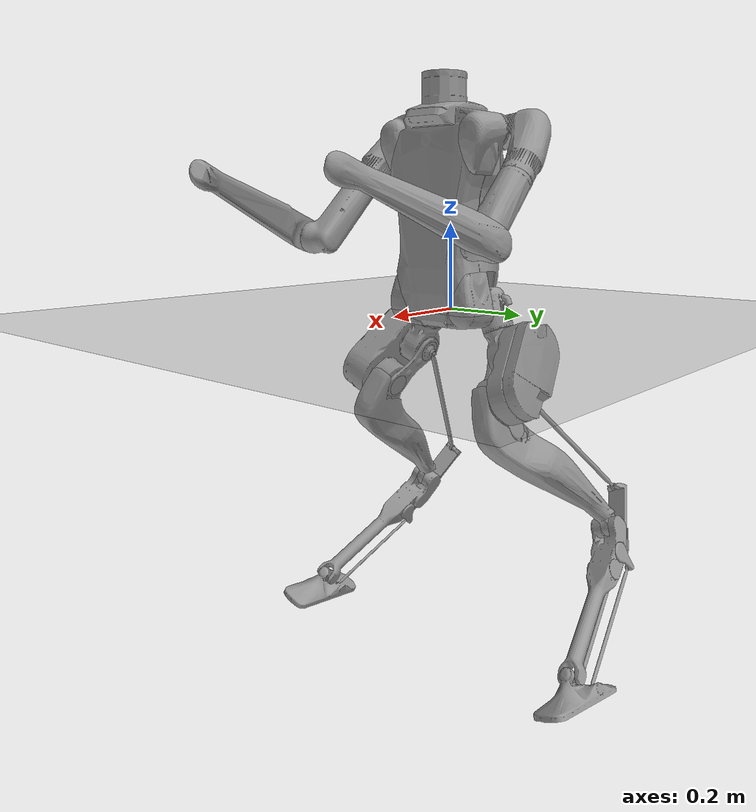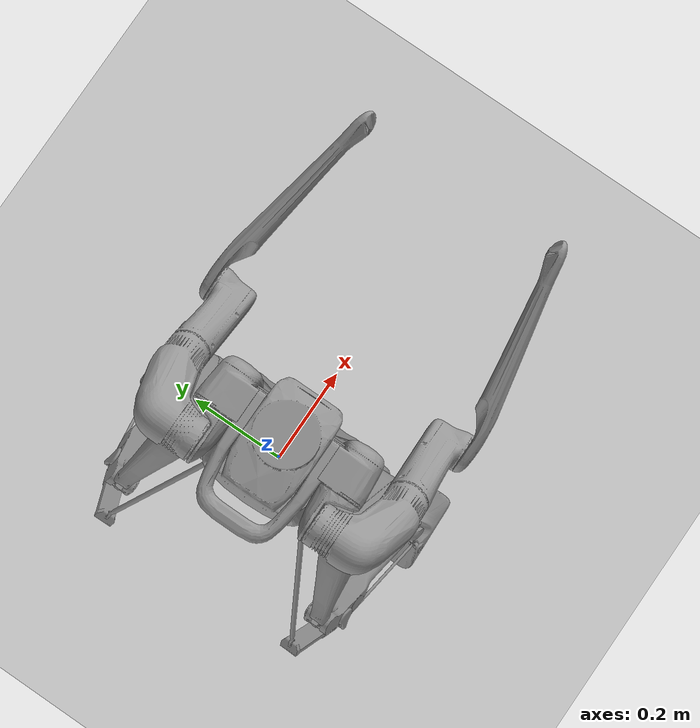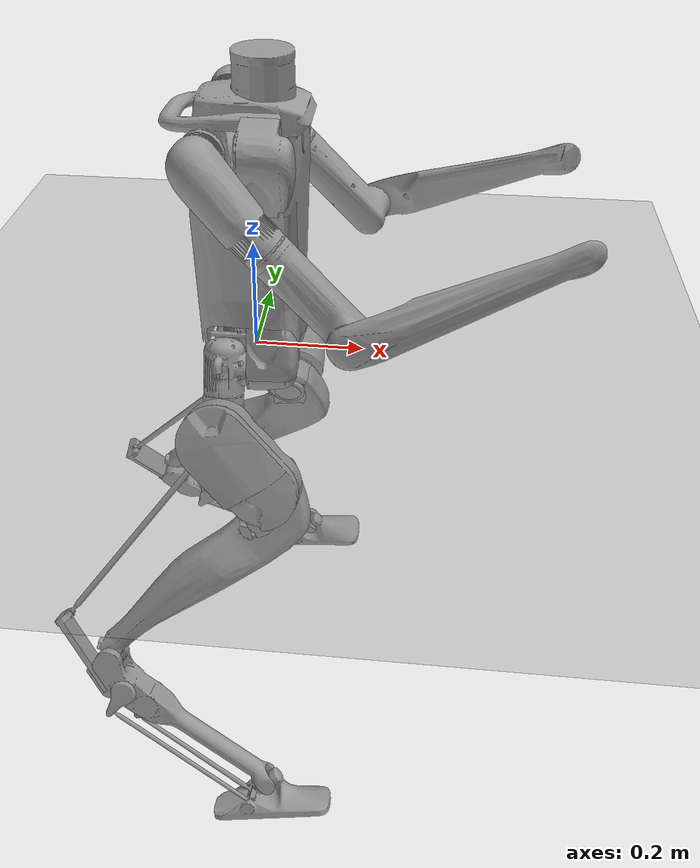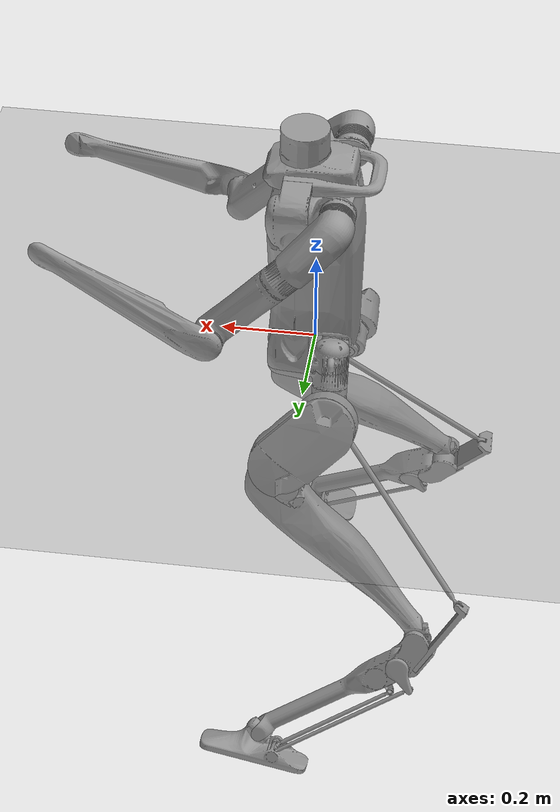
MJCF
<mujoco model='robot'>
  <compiler angle='degree' eulerseq='xyz'/>
  <option iterations='50' solver='Newton' timestep='0.0005' gravity='0 0 -9.806' cone='elliptic'/>
  <size nconmax='-1' />
  <asset>
    <material name='collision' rgba='0.1 0.5 0.9 0.4'/>
    <material name='plane' reflectance='0.000000' texrepeat='1 1' texture='plane' texuniform='true'/>
    <material name='robot' rgba='0.6 0.6 0.6 1'/>
    <texture type="skybox" builtin="gradient" rgb1=".3 .5 .7" rgb2="0 0 0" width="32" height="512"/>
    <texture builtin='checker' height='512' name='plane' rgb1='0.2 0.2 0.2' rgb2='0.3 0.3 0.3' type='2d' width='512'/>
    <texture builtin='gradient' height='128' rgb1='0.4 0.6 0.8' rgb2='0 0 0' type='skybox' width='128'/>
    <mesh name='torso/base-0' scale='1 1 1' file='meshes/torso-v3/torso.stl'/>
    <mesh name='torso/base-1' scale='1 1 1' file='meshes/leg-v3/hip-roll-housing.stl'/>
    <mesh name='torso/base-2' scale='1 1 1' file='meshes/arm-v3/link-0.stl'/>
    <mesh name='torso/base-3' scale='1 -1 1' file='meshes/leg-v3/hip-roll-housing.stl'/>
    <mesh name='torso/base-4' scale='1 -1 1' file='meshes/arm-v3/link-0.stl'/>
    <mesh name='left-leg/hip-roll-0' scale='1 1 1' file='meshes/leg-v3/hip-yaw-housing.stl'/>
    <mesh name='left-leg/hip-yaw-0' scale='1 1 1' file='meshes/leg-v3/hip-pitch-housing.stl'/>
    <mesh name='left-leg/hip-pitch-0' scale='1 1 1' file='meshes/leg-v3/hip-pitch.stl'/>
    <mesh name='left-leg/achilles-rod-0' scale='1 1 1' file='meshes/leg-v3/achilles-rod.stl'/>
    <mesh name='left-leg/knee-0' scale='1 1 1' file='meshes/leg-v3/knee.stl'/>
    <mesh name='left-leg/shin-0' scale='1 1 1' file='meshes/leg-v3/shin.stl'/>
    <mesh name='left-leg/tarsus-0' scale='1 1 1' file='meshes/leg-v3/tarsus.stl'/>
    <mesh name='left-leg/heel-spring-0' scale='1 1 1' file='meshes/leg-v3/heel-spring.stl'/>
    <mesh name='left-leg/toe-a-0' scale='1 1 1' file='meshes/leg-v3/toe-output.stl'/>
    <mesh name='left-leg/toe-a-rod-0' scale='1 1 1' file='meshes/leg-v3/toe-a-rod.stl'/>
    <mesh name='left-leg/toe-b-0' scale='1 1 1' file='meshes/leg-v3/toe-output.stl'/>
    <mesh name='left-leg/toe-b-rod-0' scale='1 1 1' file='meshes/leg-v3/toe-b-rod.stl'/>
    <mesh name='left-leg/toe-pitch-0' scale='1 1 1' file='meshes/leg-v3/toe-pitch.stl'/>
    <mesh name='left-leg/toe-roll-0' scale='1 1 1' file='meshes/leg-v3/toe-roll.stl'/>
    <mesh name='left-arm/shoulder-roll-0' scale='1 1 1' file='meshes/arm-v3/link-1.stl'/>
    <mesh name='left-arm/shoulder-pitch-0' scale='1 1 1' file='meshes/arm-v3/link-2.stl'/>
    <mesh name='left-arm/shoulder-yaw-0' scale='1 1 1' file='meshes/arm-v3/link-3.stl'/>
    <mesh name='left-arm/elbow-0' scale='1 1 1' file='meshes/arm-v3/link-4.stl'/>
    <mesh name='right-leg/hip-roll-0' scale='1 -1 1' file='meshes/leg-v3/hip-yaw-housing.stl'/>
    <mesh name='right-leg/hip-yaw-0' scale='1 -1 1' file='meshes/leg-v3/hip-pitch-housing.stl'/>
    <mesh name='right-leg/hip-pitch-0' scale='1 -1 1' file='meshes/leg-v3/hip-pitch.stl'/>
    <mesh name='right-leg/achilles-rod-0' scale='1 -1 1' file='meshes/leg-v3/achilles-rod.stl'/>
    <mesh name='right-leg/knee-0' scale='1 -1 1' file='meshes/leg-v3/knee.stl'/>
    <mesh name='right-leg/shin-0' scale='1 -1 1' file='meshes/leg-v3/shin.stl'/>
    <mesh name='right-leg/tarsus-0' scale='1 -1 1' file='meshes/leg-v3/tarsus.stl'/>
    <mesh name='right-leg/heel-spring-0' scale='1 -1 1' file='meshes/leg-v3/heel-spring.stl'/>
    <mesh name='right-leg/toe-a-0' scale='1 -1 1' file='meshes/leg-v3/toe-output.stl'/>
    <mesh name='right-leg/toe-a-rod-0' scale='1 -1 1' file='meshes/leg-v3/toe-a-rod.stl'/>
    <mesh name='right-leg/toe-b-0' scale='1 -1 1' file='meshes/leg-v3/toe-output.stl'/>
    <mesh name='right-leg/toe-b-rod-0' scale='1 -1 1' file='meshes/leg-v3/toe-b-rod.stl'/>
    <mesh name='right-leg/toe-pitch-0' scale='1 -1 1' file='meshes/leg-v3/toe-pitch.stl'/>
    <mesh name='right-leg/toe-roll-0' scale='1 -1 1' file='meshes/leg-v3/toe-roll.stl'/>
    <mesh name='right-arm/shoulder-roll-0' scale='1 -1 1' file='meshes/arm-v3/link-1.stl'/>
    <mesh name='right-arm/shoulder-pitch-0' scale='1 -1 1' file='meshes/arm-v3/link-2.stl'/>
    <mesh name='right-arm/shoulder-yaw-0' scale='1 -1 1' file='meshes/arm-v3/link-3.stl'/>
    <mesh name='right-arm/elbow-0' scale='1 -1 1' file='meshes/arm-v3/link-4.stl'/>
  </asset>
  <default>
    <default class='collision'>
      <geom conaffinity='1' condim='3' contype='1'/>
    </default>
    <equality solimp='0.9 0.95 0.001 0.1 2' solref='0.001 1.1' />
    <geom conaffinity='0' condim='1' contype='0' solref='0.02 1' />
    <joint solreflimit='0.001 1' />
  </default>
  <worldbody>
    <geom name='ground' type='plane' size='0 0 1' conaffinity='127' condim='3' friction='0.7 0.01 0.005' pos='0 0 0' priority='100' />
    <body name='torso/base' pos='0 0 0' euler='-0 0 -0'>
      <inertial pos='0.001636612541 0.0002001180789 0.2593064529' mass='15.028392' fullinertia='0.3759052548 0.3441935 0.09873232746 -8.776732849e-05 0.008498611229 6.621611757e-05' />
      <joint type='free' limited='false'/>
      <site name='torso/base/imu' pos='0 0 0' euler='0 -90 0'/>
      <geom type='mesh' mesh='torso/base-0' pos='0 0 0' euler='-0 0 -0' material='robot'/>
      <geom type='mesh' mesh='torso/base-1' pos='-0.001 0.091 0' euler='0 -90 0' material='robot'/>
      <geom type='mesh' mesh='torso/base-2' pos='-0.001 0.12 0.4' euler='-9.999933098 -90 0' material='robot'/>
      <geom type='mesh' mesh='torso/base-3' pos='-0.001 -0.091 0' euler='0 -90 0' material='robot'/>
      <geom type='mesh' mesh='torso/base-4' pos='-0.001 -0.12 0.4' euler='9.999933098 -90 0' material='robot'/>
      <camera name='forward-tis-dfm27up/color/image-raw' fovy='49.6875' pos='0.06425 0 0.38' euler='90 -90 0' user='1280 960 1'/>
      <camera name='forward-chest-realsense-d435/left-infrared/image-rect' fovy='60.2875' pos='0.093981 0.0225 0.426449' euler='-0 -45.00006627 -90' user='848 480 0'/>
      <camera name='forward-chest-realsense-d435/right-infrared/image-rect' fovy='60.2875' pos='0.093981 0.0225 0.426449' euler='-0 -45.00006627 -90' user='848 480 0'/>
      <camera name='forward-chest-realsense-d435/color/image-raw' fovy='57.637499999999996' pos='0.093981 0.0225 0.426449' euler='-0 -45.00006627 -90' user='1280 720 1'/>
      <camera name='forward-chest-realsense-d435/depth/image-rect' fovy='56.975' pos='0.093981 0.0225 0.426449' euler='-0 -45.00006627 -90' user='848 480 0'/>
      <camera name='downward-pelvis-realsense-d430/left-infrared/image-rect' fovy='60.2875' pos='0.0305 0.025 -0.03268' euler='-0 0 -90' user='848 480 0'/>
      <camera name='downward-pelvis-realsense-d430/right-infrared/image-rect' fovy='60.2875' pos='0.0305 0.025 -0.03268' euler='-0 0 -90' user='848 480 0'/>
      <camera name='downward-pelvis-realsense-d430/depth/image-rect' fovy='56.975' pos='0.0305 0.025 -0.03268' euler='-0 0 -90' user='848 480 0'/>
      <camera name='forward-pelvis-realsense-d430/left-infrared/image-rect' fovy='60.2875' pos='0.061607 0.025 -0.025283' euler='-0 -45.00006627 -90' user='848 480 0'/>
      <camera name='forward-pelvis-realsense-d430/right-infrared/image-rect' fovy='60.2875' pos='0.061607 0.025 -0.025283' euler='-0 -45.00006627 -90' user='848 480 0'/>
      <camera name='forward-pelvis-realsense-d430/depth/image-rect' fovy='56.975' pos='0.061607 0.025 -0.025283' euler='-0 -45.00006627 -90' user='848 480 0'/>
      <camera name='backward-pelvis-realsense-d430/left-infrared/image-rect' fovy='60.2875' pos='-0.000607 0.025 -0.025283' euler='7.016725531e-15 45.00006627 -90' user='848 480 0'/>
      <camera name='backward-pelvis-realsense-d430/right-infrared/image-rect' fovy='60.2875' pos='-0.000607 0.025 -0.025283' euler='7.016725531e-15 45.00006627 -90' user='848 480 0'/>
      <camera name='backward-pelvis-realsense-d430/depth/image-rect' fovy='56.975' pos='-0.000607 0.025 -0.025283' euler='7.016725531e-15 45.00006627 -90' user='848 480 0'/>
      <geom type='box' size='0.0975 0.087 0.245' pos='0.008 0 0.21' euler='-0 0 -0' friction='0.7 0.01 0.005'  mass='15.028392' rgba='0.5 0.5 0.5 0.0' class='collision'/>
      <geom type='cylinder' size='0.05 0.0325' pos='0.02 0 0.49' euler='-0 0 -0' friction='0.7 0.01 0.005'  mass='15.028392' rgba='0.5 0.5 0.5 0.0' class='collision'/>
      <body name='left-leg/hip-roll' pos='-0.001 0.091 0' euler='21.49994484 -90 0'>
        <inertial pos='-0.001967 0.000244 0.031435' mass='0.915088' fullinertia='0.001017 0.001148 0.000766 -3e-06 1.3e-05 -4e-06' />
        <joint name='left-leg/hip-roll' type='hinge' axis='0 0 1' range='-60 60' stiffness='0' frictionloss='1' damping='1' armature='0.173823936' limited='true' pos='0 0 0'/>
        <geom type='mesh' mesh='left-leg/hip-roll-0' pos='0 0 0' euler='-0 0 -0' material='robot'/>
        <body name='left-leg/hip-yaw' pos='-0.0505 0 0.044' euler='0 -90 0'>
          <inertial pos='1e-05 -0.001945 0.042033' mass='0.818753' fullinertia='0.001627 0.001929 0.00077 -1e-06 2e-06 5.3e-05' />
          <joint name='left-leg/hip-yaw' type='hinge' axis='0 0 1' range='-40 40' stiffness='0' frictionloss='1' damping='1' armature='0.067899975' limited='true' pos='0 0 0'/>
          <geom type='mesh' mesh='left-leg/hip-yaw-0' pos='0 0 0' euler='-0 0 -0' material='robot'/>
          <body name='left-leg/hip-pitch' pos='0 0.004 0.068' euler='90 -2.862499213e-14 134.9999776'>
            <inertial pos='0.060537 0.000521 -0.038857' mass='6.244279' fullinertia='0.011533 0.033345 0.033958 -0.000171 0.000148 0.000178' />
            <joint name='left-leg/hip-pitch' type='hinge' axis='0 0 -1' range='-60 90' stiffness='0' frictionloss='0.5' damping='1' armature='0.1204731904' limited='true' pos='0 0 0'/>
            <geom type='mesh' mesh='left-leg/hip-pitch-0' pos='0 0 0' euler='-0 0 -0' material='robot'/>
            <geom type='cylinder' size='0.05 0.072' pos='0 0 -0.04' euler='-0 0 -0' friction='0.7 0.01 0.005' contype='1' conaffinity='-2' mass='6.244279' rgba='0.5 0.5 0.5 0.0' class='collision'/>
            <geom type='cylinder' size='0.05 0.072' pos='0.12 0 -0.04' euler='-0 0 -0' friction='0.7 0.01 0.005' contype='1' conaffinity='-2' mass='6.244279' rgba='0.5 0.5 0.5 0.0' class='collision'/>
            <geom type='box' size='0.06 0.05 0.072' pos='0.06 0 -0.04' euler='-0 0 -0' friction='0.7 0.01 0.005' contype='1' conaffinity='-2' mass='6.244279' rgba='0.5 0.5 0.5 0.0' class='collision'/>
            <body name='left-leg/achilles-rod' pos='0 0 0.046' euler='4.089984946 0.05002908482 -82.27004088'>
              <inertial pos='0.2506 0 0' mass='0.178148' fullinertia='3e-06 0.004501 0.004501 0 0 0' />
              <joint name='left-leg/achilles-rod' type='ball' axis='0 0 1'  stiffness='0' frictionloss='0' damping='0.01' armature='0' limited='false' pos='0 0 0'/>
              <geom type='mesh' mesh='left-leg/achilles-rod-0' pos='0 0 0' euler='-0 0 -0' material='robot'/>
              <geom type='capsule' size='0.007 0.25' pos='0.25 0 0' euler='4.000053495 90 0' friction='0.7 0.01 0.005' contype='1' conaffinity='-2' mass='0.178148' rgba='0.5 0.5 0.5 0.0' class='collision'/>
            </body>
            <body name='left-leg/knee' pos='0.12 0 0.0045' euler='-0 0 -90'>
              <inertial pos='0.045641 0.042154 0.001657' mass='1.227077' fullinertia='0.002643 0.005098 0.007019 -0.001832 6.6e-05 4.5e-05' />
              <joint name='left-leg/knee' type='hinge' axis='0 0 1' range='-80 58.4' stiffness='0' frictionloss='0.5' damping='1' armature='0.1204731904' limited='true' pos='0 0 0'/>
              <geom type='mesh' mesh='left-leg/knee-0' pos='0 0 0' euler='-0 0 -0' material='robot'/>
              <body name='left-leg/shin' pos='0.060677 0.047406 0' euler='-0 0 -0'>
                <inertial pos='0.174265 0.010265 0.00107' mass='0.895793' fullinertia='0.001128 0.022492 0.022793 0.001098 0.000196 -3e-06' />
                <joint name='left-leg/shin' type='hinge' axis='0 0 1'  stiffness='6000' frictionloss='0' damping='0' armature='0' limited='false' pos='0 0 0'/>
                <geom type='mesh' mesh='left-leg/shin-0' pos='0 0 0' euler='-0 0 -0' material='robot'/>
                <geom type='cylinder' size='0.03 0.1715' pos='0.23 0 0' euler='0 90 0' friction='0.7 0.01 0.005' contype='1' conaffinity='-2' mass='0.895793' rgba='0.5 0.5 0.5 0.0' class='collision'/>
                <geom type='cylinder' size='0.05 0.1' pos='0.125 0.009 0' euler='90 83.99999778 9.128289303e-14' friction='0.7 0.01 0.005' contype='1' conaffinity='-2' mass='0.895793' rgba='0.5 0.5 0.5 0.0' class='collision'/>
                <body name='left-leg/tarsus' pos='0.434759 0.02 0' euler='-0 0 102.9999562'>
                  <inertial pos='0.100777 -0.029183 0.000678' mass='1.322865' fullinertia='0.000932 0.016409 0.016501 0.00061 0.000102 9e-06' />
                  <joint name='left-leg/tarsus' type='hinge' axis='0 0 1' range='-50.3 71.6' stiffness='0' frictionloss='0' damping='0' armature='0' limited='true' pos='0 0 0'/>
                  <geom type='mesh' mesh='left-leg/tarsus-0' pos='0 0 0' euler='-0 0 -0' material='robot'/>
                  <geom type='capsule' size='0.02 0.18' pos='0.21 -0.03 0' euler='0 90 0' friction='0.7 0.01 0.005' contype='1' conaffinity='-2' mass='1.322865' rgba='0.5 0.5 0.5 0.0' class='collision'/>
                  <geom type='box' size='0.007 0.07 0.03' pos='-0.07 -0.012 0' euler='4.999998056 -4.600265621e-05 64.9999639' friction='0.7 0.01 0.005' contype='1' conaffinity='-2' mass='1.322865' rgba='0.5 0.5 0.5 0.0' class='collision'/>
                  <body name='left-leg/heel-spring' pos='-0.01766 -0.029456 0.00104' euler='4.470028555 0.3199786449 155.799968'>
                    <inertial pos='0.049086 0.004739 -4.5e-05' mass='0.230018' fullinertia='5.5e-05 0.00074 0.000701 1.5e-05 1e-06 0' />
                    <joint name='left-leg/heel-spring' type='hinge' axis='0 0 1' range='-6 6' stiffness='4375' frictionloss='0' damping='0' armature='0' limited='true' pos='0 0 0'/>
                    <geom type='mesh' mesh='left-leg/heel-spring-0' pos='0 0 0' euler='-0 0 -0' material='robot'/>
                  </body>
                  <body name='left-leg/toe-a' pos='0.059 -0.034 -0.0276' euler='180 -7.015553385e-15 88.9599851'>
                    <inertial pos='0.005161 1e-06 -0.002248' mass='0.139557' fullinertia='2.9e-05 5.8e-05 7.4e-05 0 -4e-06 0' />
                    <joint name='left-leg/toe-a' type='hinge' axis='0 0 1' range='-46.2755 44.9815' stiffness='0' frictionloss='1' damping='1' armature='0.036089474999999996' limited='true' pos='0 0 0'/>
                    <geom type='mesh' mesh='left-leg/toe-a-0' pos='0 0 0' euler='-0 0 -0' material='robot'/>
                    <body name='left-leg/toe-a-rod' pos='0.057 0 -0.008' euler='0.3399877019 2.140028166 -88.44995297'>
                      <inertial pos='0.171071 0 0' mass='0.090983' fullinertia='1e-06 0.001182 0.001182 0 0 0' />
                      <joint name='left-leg/toe-a-rod' type='ball' axis='0 0 1'  stiffness='0' frictionloss='0' damping='0.01' armature='0' limited='false' pos='0 0 0'/>
                      <geom type='mesh' mesh='left-leg/toe-a-rod-0' pos='0 0 0' euler='-0 0 -0' material='robot'/>
                      <geom type='capsule' size='0.007 0.17' pos='0.17 0 0' euler='4.000053495 90 0' friction='0.7 0.01 0.005' contype='1' conaffinity='-2' mass='0.090983' rgba='0.5 0.5 0.5 0.0' class='collision'/>
                    </body>
                  </body>
                  <body name='left-leg/toe-b' pos='0.111 -0.034 0.0276' euler='-0 0 -88.9599851'>
                    <inertial pos='0.005161 1e-06 -0.002248' mass='0.139557' fullinertia='2.9e-05 5.8e-05 7.4e-05 0 -4e-06 0' />
                    <joint name='left-leg/toe-b' type='hinge' axis='0 0 1' range='-45.8918 45.5476' stiffness='0' frictionloss='1' damping='1' armature='0.036089474999999996' limited='true' pos='0 0 0'/>
                    <geom type='mesh' mesh='left-leg/toe-b-0' pos='0 0 0' euler='-0 0 -0' material='robot'/>
                    <body name='left-leg/toe-b-rod' pos='0.057 0 -0.008' euler='-0.220057762 -3.079997902 88.34004019'>
                      <inertial pos='0.142991 0 0' mass='0.079507' fullinertia='1e-06 0.000768 0.000768 0 0 0' />
                      <joint name='left-leg/toe-b-rod' type='ball' axis='0 0 1'  stiffness='0' frictionloss='0' damping='0.01' armature='0' limited='false' pos='0 0 0'/>
                      <geom type='mesh' mesh='left-leg/toe-b-rod-0' pos='0 0 0' euler='-0 0 -0' material='robot'/>
                      <geom type='capsule' size='0.007 0.144' pos='0.144 0 0' euler='4.000053495 90 0' friction='0.7 0.01 0.005' contype='1' conaffinity='-2' mass='0.079507' rgba='0.5 0.5 0.5 0.0' class='collision'/>
                    </body>
                  </body>
                  <body name='left-leg/toe-pitch' pos='0.408 -0.04 0' euler='-0 0 71.75004157'>
                    <inertial pos='-0.000141 2e-06 3e-06' mass='0.043881' fullinertia='5e-06 8e-06 4e-06 0 0 0' />
                    <joint name='left-leg/toe-pitch' type='hinge' axis='0 0 1' range='-44 34' stiffness='0' frictionloss='0' damping='0' armature='0' limited='true' pos='0 0 0'/>
                    <geom type='mesh' mesh='left-leg/toe-pitch-0' pos='0 0 0' euler='-0 0 -0' material='robot'/>
                    <body name='left-leg/toe-roll' pos='0 0 0' euler='0 90 0'>
                      <inertial pos='9e-06 -0.028084 -0.023204' mass='0.531283' fullinertia='0.00187 0.001616 0.000843 0 0 0.000566' />
                      <joint name='left-leg/toe-roll' type='hinge' axis='0 0 1' range='-37 33' stiffness='0' frictionloss='0' damping='0' armature='0' limited='true' pos='0 0 0'/>
                      <geom type='mesh' mesh='left-leg/toe-roll-0' pos='0 0 0' euler='-0 0 -0' material='robot'/>
                      <geom type='box' size='0.04 0.1175 0.0115' pos='0 -0.0437 -0.0255' euler='-60.00002314 0 -0' friction='0.7 0.01 0.005' contype='1' conaffinity='-2' mass='0.531283' rgba='0.5 0.5 0.5 0.0' class='collision'/>
                    </body>
                  </body>
                </body>
              </body>
            </body>
          </body>
        </body>
      </body>
      <body name='left-arm/shoulder-roll' pos='-0.001 0.12 0.4' euler='-9.999933098 -90 0'>
        <inertial pos='-0.000819 -0.003158 0.023405' mass='0.535396' fullinertia='0.000704 0.00075 0.000298 1.4e-05 1.2e-05 3.5e-05' />
        <joint name='left-arm/shoulder-roll' type='hinge' axis='0 0 1' range='-75 75' stiffness='0' frictionloss='2' damping='2' armature='0.173823936' limited='true' pos='0 0 0'/>
        <geom type='mesh' mesh='left-arm/shoulder-roll-0' pos='0 0 0' euler='-0 0 -15.99998964' material='robot'/>
        <body name='left-arm/shoulder-pitch' pos='-0.00317 -0.011055 0.0555' euler='89.99999034 -16.0000415 -44.99997193'>
          <inertial pos='-4.2e-05 -0.061882 -0.073788' mass='1.440357' fullinertia='0.006761 0.002087 0.005778 -6e-06 -3e-06 -0.002046' />
          <joint name='left-arm/shoulder-pitch' type='hinge' axis='0 0 -1' range='-145 145' stiffness='0' frictionloss='2' damping='2' armature='0.173823936' limited='true' pos='0 0 0'/>
          <geom type='mesh' mesh='left-arm/shoulder-pitch-0' pos='0 0 0' euler='-0 0 -0' material='robot'/>
          <geom type='cylinder' size='0.038 0.07' pos='0 -0.093 -0.1' euler='90 0 -0' friction='0.7 0.01 0.005' contype='2' conaffinity='-3' mass='1.440357' rgba='0.5 0.5 0.5 0.0' class='collision'/>
          <body name='left-arm/shoulder-yaw' pos='0 -0.165 -0.1' euler='90 0 -0'>
            <inertial pos='-3e-05 0.001937 0.11407' mass='1.065387' fullinertia='0.006967 0.007003 0.000673 -1e-06 -1e-06 -1.5e-05' />
            <joint name='left-arm/shoulder-yaw' type='hinge' axis='0 0 1' range='-100 100' stiffness='0' frictionloss='2' damping='2' armature='0.067899975' limited='true' pos='0 0 0'/>
            <geom type='mesh' mesh='left-arm/shoulder-yaw-0' pos='0 0 0' euler='-0 0 -0' material='robot'/>
            <geom type='cylinder' size='0.038 0.0675' pos='0 0 0.092558' euler='-0 0 -0' friction='0.7 0.01 0.005' contype='2' conaffinity='-3' mass='1.065387' rgba='0.5 0.5 0.5 0.0' class='collision'/>
            <geom type='cylinder' size='0.03 0.04' pos='0 0.0035 0.185' euler='90 -3.180554681e-15 22.50004688' friction='0.7 0.01 0.005' contype='2' conaffinity='-3' mass='1.065387' rgba='0.5 0.5 0.5 0.0' class='collision'/>
            <body name='left-arm/elbow' pos='0 -0.0385 0.185' euler='90 -3.180554681e-15 22.50004688'>
              <inertial pos='0.107996 0.000521 -0.017765' mass='0.550582' fullinertia='0.000476 0.009564 0.009437 -2.9e-05 0.001403 9e-06' />
              <joint name='left-arm/elbow' type='hinge' axis='0 0 1' range='-77.5 77.5' stiffness='0' frictionloss='2' damping='2' armature='0.173823936' limited='true' pos='0 0 0'/>
              <geom type='mesh' mesh='left-arm/elbow-0' pos='0 0 0' euler='-0 0 -0' material='robot'/>
              <geom type='cylinder' size='0.013 0.1565' pos='0.184 0.01 -0.026' euler='169.9999264 78.00000889 -179.9999524' friction='0.7 0.01 0.005' contype='2' conaffinity='-3' mass='0.550582' rgba='0.5 0.5 0.5 0.0' class='collision'/>
              <geom type='sphere' size='0.015' pos='0.37937 0 -0.061912' euler='-0 0 -0' friction='0.7 0.01 0.005' contype='2' conaffinity='-3' mass='0.550582' rgba='0.5 0.5 0.5 0.0' class='collision'/>
            </body>
          </body>
        </body>
      </body>
      <body name='right-leg/hip-roll' pos='-0.001 -0.091 0' euler='-21.49994484 -90 0'>
        <inertial pos='-0.001967 -0.000244 0.031435' mass='0.915088' fullinertia='0.001017 0.001148 0.000766 3e-06 1.3e-05 4e-06' />
        <joint name='right-leg/hip-roll' type='hinge' axis='0 0 1' range='-60 60' stiffness='0' frictionloss='1' damping='1' armature='0.173823936' limited='true' pos='0 0 0'/>
        <geom type='mesh' mesh='right-leg/hip-roll-0' pos='0 0 0' euler='-0 0 -0' material='robot'/>
        <body name='right-leg/hip-yaw' pos='-0.0505 0 0.044' euler='0 -90 0'>
          <inertial pos='1e-05 0.001945 0.042033' mass='0.818753' fullinertia='0.001627 0.001929 0.00077 1e-06 2e-06 -5.3e-05' />
          <joint name='right-leg/hip-yaw' type='hinge' axis='0 0 1' range='-40 40' stiffness='0' frictionloss='1' damping='1' armature='0.067899975' limited='true' pos='0 0 0'/>
          <geom type='mesh' mesh='right-leg/hip-yaw-0' pos='0 0 0' euler='-0 0 -0' material='robot'/>
          <body name='right-leg/hip-pitch' pos='0 -0.004 0.068' euler='-90 -3.225761214e-14 -134.9999776'>
            <inertial pos='0.060537 -0.000521 -0.038857' mass='6.244279' fullinertia='0.011533 0.033345 0.033958 0.000171 0.000148 -0.000178' />
            <joint name='right-leg/hip-pitch' type='hinge' axis='0 0 -1' range='-90 60' stiffness='0' frictionloss='0.5' damping='1' armature='0.1204731904' limited='true' pos='0 0 0'/>
            <geom type='mesh' mesh='right-leg/hip-pitch-0' pos='0 0 0' euler='-0 0 -0' material='robot'/>
            <geom type='cylinder' size='0.05 0.072' pos='0 0 -0.04' euler='-0 0 -0' friction='0.7 0.01 0.005' contype='4' conaffinity='-5' mass='6.244279' rgba='0.5 0.5 0.5 0.0' class='collision'/>
            <geom type='cylinder' size='0.05 0.072' pos='0.12 0 -0.04' euler='-0 0 -0' friction='0.7 0.01 0.005' contype='4' conaffinity='-5' mass='6.244279' rgba='0.5 0.5 0.5 0.0' class='collision'/>
            <geom type='box' size='0.06 0.05 0.072' pos='0.06 0 -0.04' euler='-0 0 -0' friction='0.7 0.01 0.005' contype='4' conaffinity='-5' mass='6.244279' rgba='0.5 0.5 0.5 0.0' class='collision'/>
            <body name='right-leg/achilles-rod' pos='0 0 0.046' euler='-4.089984946 0.05002908482 82.27004088'>
              <inertial pos='0.2506 0 0' mass='0.178148' fullinertia='3e-06 0.004501 0.004501 0 0 0' />
              <joint name='right-leg/achilles-rod' type='ball' axis='0 0 1'  stiffness='0' frictionloss='0' damping='0.01' armature='0' limited='false' pos='0 0 0'/>
              <geom type='mesh' mesh='right-leg/achilles-rod-0' pos='0 0 0' euler='-0 0 -0' material='robot'/>
              <geom type='capsule' size='0.007 0.25' pos='0.25 0 0' euler='-4.000053495 90 0' friction='0.7 0.01 0.005' contype='4' conaffinity='-5' mass='0.178148' rgba='0.5 0.5 0.5 0.0' class='collision'/>
            </body>
            <body name='right-leg/knee' pos='0.12 0 0.0045' euler='-0 0 90'>
              <inertial pos='0.045641 -0.042154 0.001657' mass='1.227077' fullinertia='0.002643 0.005098 0.007019 0.001832 6.6e-05 -4.5e-05' />
              <joint name='right-leg/knee' type='hinge' axis='0 0 1' range='-58.4 80' stiffness='0' frictionloss='0.5' damping='1' armature='0.1204731904' limited='true' pos='0 0 0'/>
              <geom type='mesh' mesh='right-leg/knee-0' pos='0 0 0' euler='-0 0 -0' material='robot'/>
              <body name='right-leg/shin' pos='0.060677 -0.047406 0' euler='-0 0 -0'>
                <inertial pos='0.174265 -0.010265 0.00107' mass='0.895793' fullinertia='0.001128 0.022492 0.022793 -0.001098 0.000196 3e-06' />
                <joint name='right-leg/shin' type='hinge' axis='0 0 1'  stiffness='6000' frictionloss='0' damping='0' armature='0' limited='false' pos='0 0 0'/>
                <geom type='mesh' mesh='right-leg/shin-0' pos='0 0 0' euler='-0 0 -0' material='robot'/>
                <geom type='cylinder' size='0.03 0.1715' pos='0.23 0 0' euler='0 90 0' friction='0.7 0.01 0.005' contype='4' conaffinity='-5' mass='0.895793' rgba='0.5 0.5 0.5 0.0' class='collision'/>
                <geom type='cylinder' size='0.05 0.1' pos='0.125 -0.009 0' euler='-90 83.99999778 -9.128289303e-14' friction='0.7 0.01 0.005' contype='4' conaffinity='-5' mass='0.895793' rgba='0.5 0.5 0.5 0.0' class='collision'/>
                <body name='right-leg/tarsus' pos='0.434759 -0.02 0' euler='-0 0 -102.9999562'>
                  <inertial pos='0.100777 0.029183 0.000678' mass='1.322865' fullinertia='0.000932 0.016409 0.016501 -0.00061 0.000102 -9e-06' />
                  <joint name='right-leg/tarsus' type='hinge' axis='0 0 1' range='-71.6 50.3' stiffness='0' frictionloss='0' damping='0' armature='0' limited='true' pos='0 0 0'/>
                  <geom type='mesh' mesh='right-leg/tarsus-0' pos='0 0 0' euler='-0 0 -0' material='robot'/>
                  <geom type='capsule' size='0.02 0.18' pos='0.21 0.03 0' euler='0 90 0' friction='0.7 0.01 0.005' contype='4' conaffinity='-5' mass='1.322865' rgba='0.5 0.5 0.5 0.0' class='collision'/>
                  <geom type='box' size='0.007 0.07 0.03' pos='-0.07 0.012 0' euler='-4.999998056 -4.600265621e-05 -64.9999639' friction='0.7 0.01 0.005' contype='4' conaffinity='-5' mass='1.322865' rgba='0.5 0.5 0.5 0.0' class='collision'/>
                  <body name='right-leg/heel-spring' pos='-0.01766 0.029456 0.00104' euler='-4.470028555 0.3199786449 -155.799968'>
                    <inertial pos='0.049086 -0.004739 -4.5e-05' mass='0.230018' fullinertia='5.5e-05 0.00074 0.000701 -1.5e-05 1e-06 0' />
                    <joint name='right-leg/heel-spring' type='hinge' axis='0 0 1' range='-6 6' stiffness='4375' frictionloss='0' damping='0' armature='0' limited='true' pos='0 0 0'/>
                    <geom type='mesh' mesh='right-leg/heel-spring-0' pos='0 0 0' euler='-0 0 -0' material='robot'/>
                  </body>
                  <body name='right-leg/toe-a' pos='0.059 0.034 -0.0276' euler='-180 -7.015553385e-15 -88.9599851'>
                    <inertial pos='0.005161 -1e-06 -0.002248' mass='0.139557' fullinertia='2.9e-05 5.8e-05 7.4e-05 0 -4e-06 0' />
                    <joint name='right-leg/toe-a' type='hinge' axis='0 0 1' range='-44.9815 46.2755' stiffness='0' frictionloss='1' damping='1' armature='0.036089474999999996' limited='true' pos='0 0 0'/>
                    <geom type='mesh' mesh='right-leg/toe-a-0' pos='0 0 0' euler='-0 0 -0' material='robot'/>
                    <body name='right-leg/toe-a-rod' pos='0.057 0 -0.008' euler='-0.3399877019 2.140028166 88.44995297'>
                      <inertial pos='0.171071 0 0' mass='0.090983' fullinertia='1e-06 0.001182 0.001182 0 0 0' />
                      <joint name='right-leg/toe-a-rod' type='ball' axis='0 0 1'  stiffness='0' frictionloss='0' damping='0.01' armature='0' limited='false' pos='0 0 0'/>
                      <geom type='mesh' mesh='right-leg/toe-a-rod-0' pos='0 0 0' euler='-0 0 -0' material='robot'/>
                      <geom type='capsule' size='0.007 0.17' pos='0.17 0 0' euler='-4.000053495 90 0' friction='0.7 0.01 0.005' contype='4' conaffinity='-5' mass='0.090983' rgba='0.5 0.5 0.5 0.0' class='collision'/>
                    </body>
                  </body>
                  <body name='right-leg/toe-b' pos='0.111 0.034 0.0276' euler='-0 0 88.9599851'>
                    <inertial pos='0.005161 -1e-06 -0.002248' mass='0.139557' fullinertia='2.9e-05 5.8e-05 7.4e-05 0 -4e-06 0' />
                    <joint name='right-leg/toe-b' type='hinge' axis='0 0 1' range='-45.5476 45.8918' stiffness='0' frictionloss='1' damping='1' armature='0.036089474999999996' limited='true' pos='0 0 0'/>
                    <geom type='mesh' mesh='right-leg/toe-b-0' pos='0 0 0' euler='-0 0 -0' material='robot'/>
                    <body name='right-leg/toe-b-rod' pos='0.057 0 -0.008' euler='0.220057762 -3.079997902 -88.34004019'>
                      <inertial pos='0.142991 0 0' mass='0.079507' fullinertia='1e-06 0.000768 0.000768 0 0 0' />
                      <joint name='right-leg/toe-b-rod' type='ball' axis='0 0 1'  stiffness='0' frictionloss='0' damping='0.01' armature='0' limited='false' pos='0 0 0'/>
                      <geom type='mesh' mesh='right-leg/toe-b-rod-0' pos='0 0 0' euler='-0 0 -0' material='robot'/>
                      <geom type='capsule' size='0.007 0.144' pos='0.144 0 0' euler='-4.000053495 90 0' friction='0.7 0.01 0.005' contype='4' conaffinity='-5' mass='0.079507' rgba='0.5 0.5 0.5 0.0' class='collision'/>
                    </body>
                  </body>
                  <body name='right-leg/toe-pitch' pos='0.408 0.04 0' euler='-0 0 -71.75004157'>
                    <inertial pos='-0.000141 -2e-06 3e-06' mass='0.043881' fullinertia='5e-06 8e-06 4e-06 0 0 0' />
                    <joint name='right-leg/toe-pitch' type='hinge' axis='0 0 1' range='-34 44' stiffness='0' frictionloss='0' damping='0' armature='0' limited='true' pos='0 0 0'/>
                    <geom type='mesh' mesh='right-leg/toe-pitch-0' pos='0 0 0' euler='-0 0 -0' material='robot'/>
                    <body name='right-leg/toe-roll' pos='0 0 0' euler='0 90 0'>
                      <inertial pos='9e-06 0.028084 -0.023204' mass='0.531283' fullinertia='0.00187 0.001616 0.000843 0 0 -0.000566' />
                      <joint name='right-leg/toe-roll' type='hinge' axis='0 0 1' range='-33 37' stiffness='0' frictionloss='0' damping='0' armature='0' limited='true' pos='0 0 0'/>
                      <geom type='mesh' mesh='right-leg/toe-roll-0' pos='0 0 0' euler='-0 0 -0' material='robot'/>
                      <geom type='box' size='0.04 0.1175 0.0115' pos='0 0.0437 -0.0255' euler='60.00002314 0 -0' friction='0.7 0.01 0.005' contype='4' conaffinity='-5' mass='0.531283' rgba='0.5 0.5 0.5 0.0' class='collision'/>
                    </body>
                  </body>
                </body>
              </body>
            </body>
          </body>
        </body>
      </body>
      <body name='right-arm/shoulder-roll' pos='-0.001 -0.12 0.4' euler='9.999933098 -90 0'>
        <inertial pos='-0.000819 0.003158 0.023405' mass='0.535396' fullinertia='0.000704 0.00075 0.000298 -1.4e-05 1.2e-05 -3.5e-05' />
        <joint name='right-arm/shoulder-roll' type='hinge' axis='0 0 1' range='-75 75' stiffness='0' frictionloss='2' damping='2' armature='0.173823936' limited='true' pos='0 0 0'/>
        <geom type='mesh' mesh='right-arm/shoulder-roll-0' pos='0 0 0' euler='-0 0 15.99998964' material='robot'/>
        <body name='right-arm/shoulder-pitch' pos='-0.00317 0.011055 0.0555' euler='-89.99999034 -16.0000415 44.99997193'>
          <inertial pos='-4.2e-05 0.061882 -0.073788' mass='1.440357' fullinertia='0.006761 0.002087 0.005778 6e-06 -3e-06 0.002046' />
          <joint name='right-arm/shoulder-pitch' type='hinge' axis='0 0 -1' range='-145 145' stiffness='0' frictionloss='2' damping='2' armature='0.173823936' limited='true' pos='0 0 0'/>
          <geom type='mesh' mesh='right-arm/shoulder-pitch-0' pos='0 0 0' euler='-0 0 -0' material='robot'/>
          <geom type='cylinder' size='0.038 0.07' pos='0 0.093 -0.1' euler='-90 0 -0' friction='0.7 0.01 0.005' contype='8' conaffinity='-9' mass='1.440357' rgba='0.5 0.5 0.5 0.0' class='collision'/>
          <body name='right-arm/shoulder-yaw' pos='0 0.165 -0.1' euler='-90 0 -0'>
            <inertial pos='-3e-05 -0.001937 0.11407' mass='1.065387' fullinertia='0.006967 0.007003 0.000673 1e-06 -1e-06 1.5e-05' />
            <joint name='right-arm/shoulder-yaw' type='hinge' axis='0 0 1' range='-100 100' stiffness='0' frictionloss='2' damping='2' armature='0.067899975' limited='true' pos='0 0 0'/>
            <geom type='mesh' mesh='right-arm/shoulder-yaw-0' pos='0 0 0' euler='-0 0 -0' material='robot'/>
            <geom type='cylinder' size='0.038 0.0675' pos='0 0 0.092558' euler='-0 0 -0' friction='0.7 0.01 0.005' contype='8' conaffinity='-9' mass='1.065387' rgba='0.5 0.5 0.5 0.0' class='collision'/>
            <geom type='cylinder' size='0.03 0.04' pos='0 -0.0035 0.185' euler='-90 -3.360791161e-15 -22.50004688' friction='0.7 0.01 0.005' contype='8' conaffinity='-9' mass='1.065387' rgba='0.5 0.5 0.5 0.0' class='collision'/>
            <body name='right-arm/elbow' pos='0 0.0385 0.185' euler='-90 -3.360791161e-15 -22.50004688'>
              <inertial pos='0.107996 -0.000521 -0.017765' mass='0.550582' fullinertia='0.000476 0.009564 0.009437 2.9e-05 0.001403 -9e-06' />
              <joint name='right-arm/elbow' type='hinge' axis='0 0 1' range='-77.5 77.5' stiffness='0' frictionloss='2' damping='2' armature='0.173823936' limited='true' pos='0 0 0'/>
              <geom type='mesh' mesh='right-arm/elbow-0' pos='0 0 0' euler='-0 0 -0' material='robot'/>
              <geom type='cylinder' size='0.013 0.1565' pos='0.184 -0.01 -0.026' euler='-169.9999264 78.00000889 179.9999524' friction='0.7 0.01 0.005' contype='8' conaffinity='-9' mass='0.550582' rgba='0.5 0.5 0.5 0.0' class='collision'/>
              <geom type='sphere' size='0.015' pos='0.37937 0 -0.061912' euler='-0 0 -0' friction='0.7 0.01 0.005' contype='8' conaffinity='-9' mass='0.550582' rgba='0.5 0.5 0.5 0.0' class='collision'/>
            </body>
          </body>
        </body>
      </body>
    </body>
  </worldbody>
  <equality>
    <connect name='left-leg/achilles-rod' body1='left-leg/heel-spring' body2='left-leg/achilles-rod' anchor='0.113789 -0.011056 0' />
    <connect name='left-leg/toe-a-rod' body1='left-leg/toe-roll' body2='left-leg/toe-a-rod' anchor='0.0179 -0.009551 -0.054164' />
    <connect name='left-leg/toe-b-rod' body1='left-leg/toe-roll' body2='left-leg/toe-b-rod' anchor='-0.0181 -0.009551 -0.054164' />
    <connect name='right-leg/achilles-rod' body1='right-leg/heel-spring' body2='right-leg/achilles-rod' anchor='0.113789 0.011056 0' />
    <connect name='right-leg/toe-a-rod' body1='right-leg/toe-roll' body2='right-leg/toe-a-rod' anchor='0.0179 0.009551 -0.054164' />
    <connect name='right-leg/toe-b-rod' body1='right-leg/toe-roll' body2='right-leg/toe-b-rod' anchor='-0.0181 0.009551 -0.054164' />
  </equality>
  <actuator>
    <motor name='left-leg/hip-roll' joint='left-leg/hip-roll' gear='80' ctrllimited='true' ctrlrange='-1.4125 1.4125'/>
    <motor name='left-leg/hip-yaw' joint='left-leg/hip-yaw' gear='50' ctrllimited='true' ctrlrange='-1.5835307242068533 1.5835307242068533'/>
    <motor name='left-leg/hip-pitch' joint='left-leg/hip-pitch' gear='16' ctrllimited='true' ctrlrange='-13.557993638726353 13.557993638726353'/>
    <motor name='left-leg/knee' joint='left-leg/knee' gear='16' ctrllimited='true' ctrlrange='-14.457309387714753 14.457309387714753'/>
    <motor name='left-leg/toe-a' joint='left-leg/toe-a' gear='50' ctrllimited='true' ctrlrange='-0.8395188473154137 0.8395188473154137'/>
    <motor name='left-leg/toe-b' joint='left-leg/toe-b' gear='50' ctrllimited='true' ctrlrange='-0.8395188473154137 0.8395188473154137'/>
    <motor name='left-arm/shoulder-roll' joint='left-arm/shoulder-roll' gear='80' ctrllimited='true' ctrlrange='-1.4125 1.4125'/>
    <motor name='left-arm/shoulder-pitch' joint='left-arm/shoulder-pitch' gear='80' ctrllimited='true' ctrlrange='-1.4125 1.4125'/>
    <motor name='left-arm/shoulder-yaw' joint='left-arm/shoulder-yaw' gear='50' ctrllimited='true' ctrlrange='-1.5835307242068533 1.5835307242068533'/>
    <motor name='left-arm/elbow' joint='left-arm/elbow' gear='80' ctrllimited='true' ctrlrange='-1.4125 1.4125'/>
    <motor name='right-leg/hip-roll' joint='right-leg/hip-roll' gear='80' ctrllimited='true' ctrlrange='-1.4125 1.4125'/>
    <motor name='right-leg/hip-yaw' joint='right-leg/hip-yaw' gear='50' ctrllimited='true' ctrlrange='-1.5835307242068533 1.5835307242068533'/>
    <motor name='right-leg/hip-pitch' joint='right-leg/hip-pitch' gear='16' ctrllimited='true' ctrlrange='-13.557993638726353 13.557993638726353'/>
    <motor name='right-leg/knee' joint='right-leg/knee' gear='16' ctrllimited='true' ctrlrange='-14.457309387714753 14.457309387714753'/>
    <motor name='right-leg/toe-a' joint='right-leg/toe-a' gear='50' ctrllimited='true' ctrlrange='-0.8395188473154137 0.8395188473154137'/>
    <motor name='right-leg/toe-b' joint='right-leg/toe-b' gear='50' ctrllimited='true' ctrlrange='-0.8395188473154137 0.8395188473154137'/>
    <motor name='right-arm/shoulder-roll' joint='right-arm/shoulder-roll' gear='80' ctrllimited='true' ctrlrange='-1.4125 1.4125'/>
    <motor name='right-arm/shoulder-pitch' joint='right-arm/shoulder-pitch' gear='80' ctrllimited='true' ctrlrange='-1.4125 1.4125'/>
    <motor name='right-arm/shoulder-yaw' joint='right-arm/shoulder-yaw' gear='50' ctrllimited='true' ctrlrange='-1.5835307242068533 1.5835307242068533'/>
    <motor name='right-arm/elbow' joint='right-arm/elbow' gear='80' ctrllimited='true' ctrlrange='-1.4125 1.4125'/>
  </actuator>
  <sensor>
    <gyro name='torso/base/imu-gyro' site='torso/base/imu' cutoff='34.9' noise='0.00173'/>
    <accelerometer name='torso/base/imu-accelerometer' site='torso/base/imu' cutoff='157' noise='0.0396'/>
    <magnetometer name='torso/base/imu-magnetometer' site='torso/base/imu' cutoff='2.5' noise='0.001'/>
  </sensor>
</mujoco>
